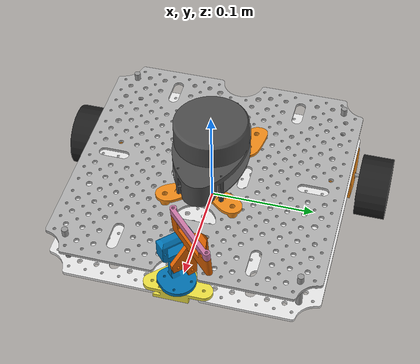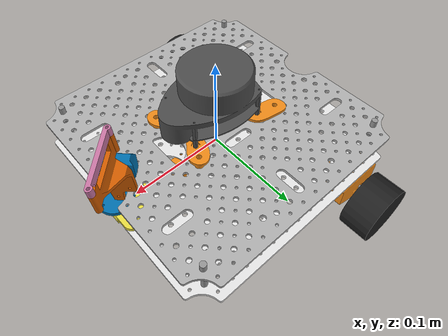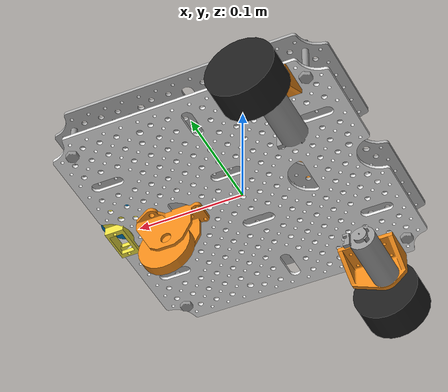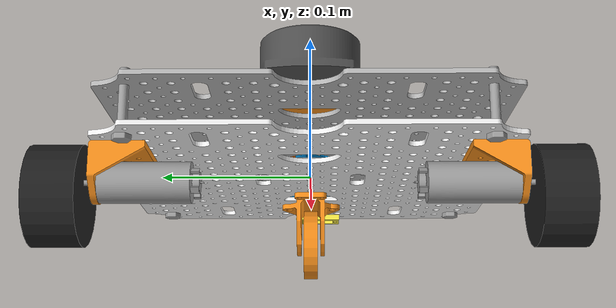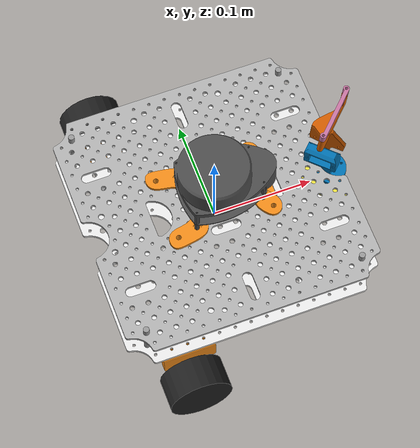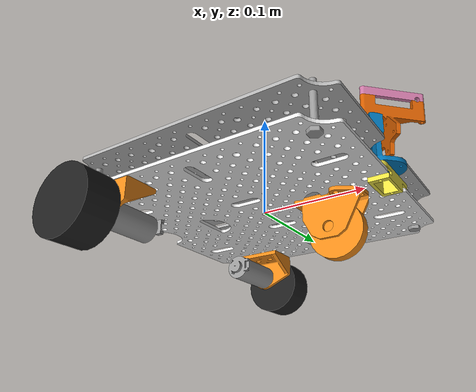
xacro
<?xml version="1.0" encoding="utf-8"?>
<robot name="billy_camarm" xmlns:xacro="http://www.ros.org/wiki/xacro">

    <!-- Joint, link and color of components -->

    <link name="base_footprint"/>
    <joint name="base_joint" type="fixed">
      <origin xyz="0 0 0" rpy="0 0 0" />
      <parent link="base_footprint"/>
      <child link="base_link"/>
    </joint>

    <link name="odom"/>
    <joint name="odom_joint" type="fixed">
      <origin xyz="0 0 0" rpy="0 0 0" />
      <parent link="odom"/>
      <child link="base_footprint"/>
    </joint>

    <link name="base_link">
      <visual>
        <geometry>
          <mesh scale="0.001 0.001 0.001" filename="package://billy_description/meshes/TurtlebotBilly_New_Stage.stl"/>
        </geometry>
        <origin xyz="0 0 0" rpy="0 0 1.57"/>
      </visual>
      <collision>
        <geometry>
          <mesh scale="0.001 0.001 0.001" filename="package://billy_description/meshes/TurtlebotBilly_New_Stage.stl"/>
        </geometry>
        <origin xyz="0 0 0" rpy="0 0 1.57"/>
      </collision>
      <inertial>
        <origin xyz="0.0 0 0"/>
        <mass value="10.0"/>
        <inertia ixx="0.01" ixy="0.0" ixz="0.0"
                 iyy="0.01" iyz="0.0"
                 izz="0.03"/>
      </inertial>
    </link>
    <gazebo reference="base_link">
      <material>Gazebo/White</material>
    </gazebo>

    <joint name="stand_1_joint" type="fixed">
      <origin xyz="0.108 0.108 -0.005" rpy="0 0 0" />
      <parent link="base_link"/>
      <child link="stand_1_link" />
    </joint>
    <link name="stand_1_link">
      <visual>
        <geometry>
         <mesh scale="0.001 0.001 0.001" filename="package://billy_description/meshes/VisM6x40.stl"/>
        </geometry>
        <origin xyz="0 0 0" rpy="0 0 0" />
      </visual>
      <collision>
        <geometry>
         <mesh scale="0.001 0.001 0.001" filename="package://billy_description/meshes/VisM6x40.stl"/>
        </geometry>
        <origin xyz="0 0 0" rpy="0 0 0" />
      </collision>
    </link>
    <gazebo reference="stand_1_link">
      <material>Gazebo/Grey</material>
    </gazebo>

    <joint name="stand_2_joint" type="fixed">
      <origin xyz="-0.108 0.108 -0.005" rpy="0 0 0" />
      <parent link="base_link"/>
      <child link="stand_2_link" />
    </joint>
    <link name="stand_2_link">
      <visual>
        <geometry>
         <mesh scale="0.001 0.001 0.001" filename="package://billy_description/meshes/VisM6x40.stl"/>
        </geometry>
        <origin xyz="0 0 0" rpy="0 0 0" />
      </visual>
      <collision>
        <geometry>
         <mesh scale="0.001 0.001 0.001" filename="package://billy_description/meshes/VisM6x40.stl"/>
        </geometry>
        <origin xyz="0 0 0" rpy="0 0 0" />
      </collision>
    </link>
    <gazebo reference="stand_2_link">
      <material>Gazebo/Grey</material>
    </gazebo>

    <joint name="stand_3_joint" type="fixed">
      <origin xyz="-0.108 -0.108 -0.005" rpy="0 0 0" />
      <parent link="base_link"/>
      <child link="stand_3_link" />
    </joint>
    <link name="stand_3_link">
      <visual>
        <geometry>
         <mesh scale="0.001 0.001 0.001" filename="package://billy_description/meshes/VisM6x40.stl"/>
        </geometry>
        <origin rpy="0 0 0" xyz="0 0 0.0"/>
      </visual>
      <collision>
        <geometry>
         <mesh scale="0.001 0.001 0.001" filename="package://billy_description/meshes/VisM6x40.stl"/>
        </geometry>
        <origin rpy="0 0 0" xyz="0 0 0.0"/>
      </collision>
    </link>
    <gazebo reference="stand_3_link">
      <material>Gazebo/Grey</material>
    </gazebo>

    <joint name="stand_4_joint" type="fixed">
      <origin xyz="0.108 -0.108 -0.005" rpy="0 0 0" />
      <parent link="base_link"/>
      <child link="stand_4_link" />
    </joint>
    <link name="stand_4_link">
      <visual>
        <geometry>
         <mesh scale="0.001 0.001 0.001" filename="package://billy_description/meshes/VisM6x40.stl"/>
        </geometry>
        <origin rpy="0 0 0" xyz="0 0 0.0"/>
      </visual>
      <collision>
        <geometry>
         <mesh scale="0.001 0.001 0.001" filename="package://billy_description/meshes/VisM6x40.stl"/>
        </geometry>
        <origin rpy="0 0 0" xyz="0 0 0.0"/>
      </collision>
    </link>
    <gazebo reference="stand_4_link">
      <material>Gazebo/Grey</material>
    </gazebo>

    <joint name="second_level_joint" type="fixed">
      <origin xyz="-0.108 -0.108 0.035" rpy="0 0 0" />
      <parent link="stand_1_link"/>
      <child link="second_level_link"/>
    </joint>
    <link name="second_level_link">
      <visual>
        <geometry>
          <mesh scale="0.001 0.001 0.001" filename="package://billy_description/meshes/TurtlebotBilly_New_Stage.stl"/>
        </geometry>
        <origin xyz="0 0 0" rpy="0 0 1.57"/>
      </visual>
      <collision>
        <geometry>
          <mesh scale="0.001 0.001 0.001" filename="package://billy_description/meshes/TurtlebotBilly_New_Stage.stl"/>
        </geometry>
        <origin xyz="0 0 0" rpy="0 0 1.57"/>
      </collision>
    </link>
    <gazebo reference="base_second_link">
      <material>Gazebo/White</material>
    </gazebo>

    <joint name="lidar_shield_joint" type="fixed">
      <origin xyz="0 0 0.01" rpy="0 0 0" />
      <parent link="second_level_link"/>
      <child link="lidar_shield_link" />
    </joint>
    <link name="lidar_shield_link">
      <visual>
        <geometry>
         <mesh scale="0.001 0.001 0.001" filename="package://billy_description/meshes/TurtlebotBilly_Shield_Lidar.stl"/>
        </geometry>
        <origin xyz="0 0 0" rpy="0 0 0"/>
      </visual>
      <collision>
        <geometry>
         <mesh scale="0.001 0.001 0.001" filename="package://billy_description/meshes/TurtlebotBilly_Shield_Lidar.stl"/>
        </geometry>
        <origin xyz="0 0 0.0" rpy="0 0 0"/>
      </collision>
    </link>
    <gazebo reference="lidar_shield_link">
      <material>Gazebo/Orange</material>
    </gazebo>

    <joint name="lidar_joint" type="fixed">
      <origin xyz="0 0 0.028" rpy="0 0 1.57" />
      <parent link="lidar_shield_link"/>
      <child link="lidar_link" />
    </joint>
    <link name="lidar_link">
      <visual>
        <geometry>
         <mesh scale="0.001 0.001 0.001" filename="package://billy_description/meshes/TurtlebotBilly_Lidar.stl"/>
        </geometry>
        <origin xyz="0 0 0" rpy="0 0 0"/>
      </visual>
      <collision>
        <geometry>
         <mesh scale="0.001 0.001 0.001" filename="package://billy_description/meshes/TurtlebotBilly_Lidar.stl"/>
        </geometry>
        <origin xyz="0 0 0.0" rpy="0 0 0"/>
      </collision>
    </link>
    <gazebo reference="lidar_link">
      <material>Gazebo/DarkGrey</material>
    </gazebo>

    <joint name="laser_joint" type="fixed">
      <origin xyz="0 0 0" rpy="0 0 0" />
      <parent link="lidar_link"/>
      <child link="laser" />
    </joint>
    <link name="laser"></link>

    <joint name="camarm_shield_joint" type="fixed">
      <origin xyz="0.12 -0.005 -0.028" rpy="0 0 0" />
      <parent link="second_level_link"/>
      <child link="camarm_shield_link" />
    </joint>
    <link name="camarm_shield_link">
      <visual>
        <geometry>
         <mesh scale="0.001 0.001 0.001" filename="package://billy_description/meshes/TurtlebotBilly_CamArm_Shield.stl"/>
        </geometry>
        <origin xyz="0 0 0" rpy="0 0 0"/>
      </visual>
      <collision>
        <geometry>
         <mesh scale="0.001 0.001 0.001" filename="package://billy_description/meshes/TurtlebotBilly_CamArm_Shield.stl"/>
        </geometry>
        <origin xyz="0 0 0" rpy="0 0 0"/>
      </collision>
      <inertial>
        <origin xyz="0 0 0"/>
        <mass value="0.5"/>
        <inertia ixx="0.01" ixy="0.0" ixz="0.0"
                 iyy="0.01" iyz="0.0"
                 izz="0.03"/>
      </inertial>
    </link>

    <joint name="camarm_ztox_joint" type="revolute">
      <origin xyz="0 0 0.01" rpy="0 0 0" />
      <parent link="camarm_shield_link"/>
      <child link="camarm_ztox_link" />
      <axis xyz="0 0 1"/>
      <limit effort="1000.0" lower="-3.14" upper="3.14" velocity="0.5"/>
    </joint>
    <link name="camarm_ztox_link">
      <visual>
        <geometry>
         <mesh scale="0.001 0.001 0.001" filename="package://billy_description/meshes/TurtlebotBilly_CamArm_ZtoX.stl"/>
        </geometry>
        <origin xyz="0 0 0" rpy="0 0 0"/>
      </visual>
      <collision>
        <geometry>
         <mesh scale="0.001 0.001 0.001" filename="package://billy_description/meshes/TurtlebotBilly_CamArm_ZtoX.stl"/>
        </geometry>
        <origin xyz="0 0 0" rpy="0 0 0"/>
      </collision>
      <inertial>
        <origin xyz="0 0 0"/>
        <mass value="0.5"/>
        <inertia ixx="0.01" ixy="0.0" ixz="0.0"
                 iyy="0.01" iyz="0.0"
                 izz="0.03"/>
      </inertial>
    </link>
    <transmission name="trans_camarm_ztox_link">
      <type>transmission_interface/SimpleTransmission</type>
      <joint name="camarm_ztox_joint">
        <hardwareInterface>hardware_interface/EffortJointInterface</hardwareInterface>
      </joint>
      <actuator name="ac_camarm_ztox_link">
        <hardwareInterface>hardware_interface/EffortJointInterface</hardwareInterface>
        <mechanicalReduction>1</mechanicalReduction>
      </actuator>
    </transmission>

    <joint name="camarm_connector_bot_joint" type="revolute">
      <origin xyz="-0.005 0.01 0.04" rpy="0 0 0.785"/>
      <parent link="camarm_ztox_link"/>
      <child link="camarm_connector_bot_link" />
      <axis xyz="1 0 0"/>
      <limit effort="1000.0" lower="-2.2" upper="-0.8" velocity="0.5"/>
    </joint>
    <link name="camarm_connector_bot_link">
      <visual>
        <geometry>
         <mesh scale="0.001 0.001 0.001" filename="package://billy_description/meshes/TurtlebotBilly_CamArm_ConnectorBot.stl"/>
        </geometry>
        <origin xyz="0.005 0 -0.045" rpy="0 0 -0.785"/>
      </visual>
      <collision>
        <geometry>
         <mesh scale="0.001 0.001 0.001" filename="package://billy_description/meshes/TurtlebotBilly_CamArm_ConnectorBot.stl"/>
        </geometry>
        <origin xyz="0.005 0 -0.045" rpy="0 0 -0.785"/>
      </collision>
      <inertial>
        <origin xyz="0 0 0"/>
        <mass value="0.5"/>
        <inertia ixx="0.01" ixy="0.0" ixz="0.0"
                 iyy="0.01" iyz="0.0"
                 izz="0.03"/>
      </inertial>
    </link>
    <transmission name="trans_camarm_connector_bot_link">
      <type>transmission_interface/SimpleTransmission</type>
      <joint name="camarm_connector_bot_joint">
        <hardwareInterface>hardware_interface/EffortJointInterface</hardwareInterface>
      </joint>
      <actuator name="ac_camarm_connector_bot_link">
        <hardwareInterface>hardware_interface/EffortJointInterface</hardwareInterface>
        <mechanicalReduction>1</mechanicalReduction>
      </actuator>
    </transmission>

    <joint name="camarm_connector_top_joint" type="fixed">
      <origin xyz="0.005 0 -0.045" rpy="0 0 -0.785"/>
      <parent link="camarm_connector_bot_link"/>
      <child link="camarm_connector_top_link" />
    </joint>
    <link name="camarm_connector_top_link">
      <visual>
        <geometry>
         <mesh scale="0.001 0.001 0.001" filename="package://billy_description/meshes/TurtlebotBilly_CamArm_ConnectorTop.stl"/>
        </geometry>
        <origin xyz="0 0 0" rpy="0 0 0"/>
      </visual>
      <collision>
        <geometry>
         <mesh scale="0.001 0.001 0.001" filename="package://billy_description/meshes/TurtlebotBilly_CamArm_ConnectorTop.stl"/>
        </geometry>
        <origin xyz="0 0 0" rpy="0 0 0"/>
      </collision>
      <inertial>
        <origin xyz="0 0 0"/>
        <mass value="0.5"/>
        <inertia ixx="0.01" ixy="0.0" ixz="0.0"
                 iyy="0.01" iyz="0.0"
                 izz="0.03"/>
      </inertial>
    </link>

    <joint name="front_wheel_holder_joint" type="fixed">
      <origin xyz="0.073 0 -0.005" rpy="0 0 3.14" />
      <parent link="base_link"/>
      <child link="front_wheel_holder_link" />
    </joint>
    <link name="front_wheel_holder_link">
      <visual>
        <geometry>
         <mesh scale="0.001 0.001 0.001" filename="package://billy_description/meshes/TurtlebotBilly_FrontWheel.stl"/>
        </geometry>
        <origin rpy="0 0 0" xyz="0 0 0.0"/>
      </visual>
      <collision>
        <geometry>
         <mesh scale="0.001 0.001 0.001" filename="package://billy_description/meshes/TurtlebotBilly_FrontWheel.stl"/>
        </geometry>
        <origin rpy="0 0 0" xyz="0 0 0.0"/>
      </collision>
    </link>
    <gazebo reference="front_wheel_holder_link">
      <material>Gazebo/Orange</material>
    </gazebo>

    <joint name="front_wheel_joint" type="fixed">
      <parent link="front_wheel_holder_link"/>
      <child link="front_wheel_link"/>
      <origin xyz="0 0 -0.028" rpy="1.57 0 0"/>
    </joint>
    <link name="front_wheel_link">
      <visual>
        <geometry>
          <cylinder length="0.01" radius="0.025"/>
          <!--sphere radius="0.19"/-->
        </geometry>
        <origin rpy="0 0 0" xyz="0 0 0"/>
      </visual>
      <collision>
        <geometry>
          <cylinder length="0.01" radius="0.025"/>
          <!--sphere radius="0.19"/-->
        </geometry>
        <origin rpy="0 0 0" xyz="0 0 0"/>
      </collision>
      <inertial>
        <mass value="0.4" />
        <origin xyz="0 0 0" />
        <inertia ixx="0.001" ixy="0.0" ixz="0.0"
                 iyy="0.001" iyz="0.0"
                 izz="0.001" />
      </inertial>
    </link>
    <gazebo reference="front_wheel_link">
      <material>Gazebo/Orange</material>
    </gazebo>

    <joint name="wheel_left_holder_joint" type="fixed">
      <origin xyz="-0.118 -0.129 -0.023" rpy="0 0 0" />
      <parent link="base_link"/>
      <child link="wheel_left_holder_link" />
    </joint>
    <link name="wheel_left_holder_link">
      <visual>
        <geometry>
         <mesh scale="0.001 0.001 0.001" filename="package://billy_description/meshes/TurtlebotBilly_Motor_ShieldL_v1.stl"/>
        </geometry>
        <origin xyz="0 0 0" rpy="0 0 0"/>
      </visual>
      <collision>
        <geometry>
         <mesh scale="0.001 0.001 0.001" filename="package://billy_description/meshes/TurtlebotBilly_Motor_ShieldL_v1.stl"/>
        </geometry>
        <origin xyz="0 0 0.0" rpy="0 0 0"/>
      </collision>
    </link>
    <gazebo reference="wheel_left_holder_link">
      <material>Gazebo/Orange</material>
    </gazebo>

    <joint name="motor_left_joint" type="fixed">
      <origin xyz="0.038 0.004 0" rpy="0 0 0" />
      <parent link="wheel_left_holder_link"/>
      <child link="motor_left_link" />
    </joint>
    <link name="motor_left_link">
      <color name="yellow" />
      <visual>
        <geometry>
         <mesh scale="0.001 0.001 0.001" filename="package://billy_description/meshes/TurtlebotBilly_Motor.stl"/>
        </geometry>
        <origin xyz="0 0 0" rpy="0 0 0"/>
      </visual>
      <collision>
        <geometry>
         <mesh scale="0.001 0.001 0.001" filename="package://billy_description/meshes/TurtlebotBilly_Motor.stl"/>
        </geometry>
        <origin xyz="0 0 0.0" rpy="0 0 0"/>
      </collision>
    </link>
    <gazebo reference="motor_left_link">
      <material>Gazebo/Grey</material>
    </gazebo>

    <joint name="wheel_left_joint" type="continuous">
      <parent link="base_link"/>
      <child link="wheel_left_link"/>
      <origin xyz="-0.075 -0.150 -0.03" rpy="-1.57 0 0"/>
      <axis xyz="0 0 1"/>
    </joint>
    <link name="wheel_left_link">
      <visual name="visual">
        <geometry>
          <!-- cylinder length="0.0206" radius="0.0550"/-->
          <cylinder length="0.031" radius="0.031"/>
        </geometry>
        <origin rpy="0.0 0 0" xyz="0 0 0"/>
      </visual>
      <collision>
        <geometry>
         <cylinder length="0.031" radius="0.031"/>
        </geometry>
        <origin rpy="0.0 0 0" xyz="0 0 0"/>
      </collision>
      <inertial>
        <mass value="0.4" />
        <origin xyz="0 0 0" />
        <inertia ixx="0.001" ixy="0.0" ixz="0.0"
                 iyy="0.001" iyz="0.0"
                 izz="0.001" />
      </inertial>
    </link>
    <gazebo reference="wheel_left_link">
      <material>Gazebo/Black</material>
    </gazebo>

    <joint name="wheel_right_holder_joint" type="fixed">
      <origin xyz="-0.080 0.129 -0.023" rpy="0 0 3.14" />
      <parent link="base_link"/>
      <child link="wheel_right_holder_link" />
    </joint>
    <link name="wheel_right_holder_link">
      <color name="yellow" />
      <visual>
        <geometry>
         <mesh scale="0.001 0.001 0.001" filename="package://billy_description/meshes/TurtlebotBilly_Motor_ShieldR_v1.stl"/>
        </geometry>
        <origin xyz="0 0 0" rpy="0 0 0"/>
      </visual>
      <collision>
        <geometry>
         <mesh scale="0.001 0.001 0.001" filename="package://billy_description/meshes/TurtlebotBilly_Motor_ShieldR_v1.stl"/>
        </geometry>
        <origin xyz="0 0 0.0" rpy="0 0 0"/>
      </collision>
    </link>
    <gazebo reference="wheel_right_holder_link">
      <material>Gazebo/Orange</material>
    </gazebo>

    <joint name="motor_right_joint" type="fixed">
      <origin xyz="0 0.004 0" rpy="0 3.14 0" />
      <parent link="wheel_right_holder_link"/>
      <child link="motor_right_link" />
    </joint>
    <link name="motor_right_link">
      <color name="yellow" />
      <visual>
        <geometry>
         <mesh scale="0.001 0.001 0.001" filename="package://billy_description/meshes/TurtlebotBilly_Motor.stl"/>
        </geometry>
        <origin xyz="0 0 0" rpy="0 0 0"/>
      </visual>
      <collision>
        <geometry>
         <mesh scale="0.001 0.001 0.001" filename="package://billy_description/meshes/TurtlebotBilly_Motor.stl"/>
        </geometry>
        <origin xyz="0 0 0.0" rpy="0 0 0"/>
      </collision>
    </link>
    <gazebo reference="motor_right_link">
      <material>Gazebo/Grey</material>
    </gazebo>

    <joint name="wheel_right_joint" type="continuous">
      <parent link="base_link"/>
      <child link="wheel_right_link"/>
      <origin xyz="-0.075 0.150 -0.03" rpy="-1.57 0 0"/>
      <axis xyz="0 0 1"/>
    </joint>
    <link name="wheel_right_link">
      <visual name="visual">
        <geometry>
          <cylinder length="0.031" radius="0.031"/>
        </geometry>
        <origin rpy="0.0 0 0" xyz="0 0 0"/>
      </visual>
      <collision>
        <geometry>
         <cylinder length="0.031" radius="0.031"/>
        </geometry>
        <origin rpy="0.0 0 0" xyz="0 0 0"/>
      </collision>
      <inertial>
        <mass value="0.4" />
        <origin xyz="0 0 0" />
        <inertia ixx="0.001" ixy="0.0" ixz="0.0"
                 iyy="0.001" iyz="0.0"
                 izz="0.001" />
      </inertial>
    </link>
    <gazebo reference="wheel_right_link">
      <material>Gazebo/Black</material>
    </gazebo>

    <!-- Gazebo Pluggins -->

    <gazebo><plugin name="differential_drive_controller" filename="libgazebo_ros_diff_drive.so">
        <legacyMode>false</legacyMode>
        <alwaysOn>true</alwaysOn>
        <rosDebugLevel>na</rosDebugLevel>
        <publishWheelTF>true</publishWheelTF>
        <publishTf>1</publishTf>
        <publishWheelJointState>true</publishWheelJointState>
        <updateRate>100.0</updateRate>
        <leftJoint>wheel_left_joint</leftJoint>
        <rightJoint>wheel_right_joint</rightJoint>
        <wheelSeparation>.03</wheelSeparation>
        <wheelDiameter>0.031</wheelDiameter>
        <wheelAcceleration>1.0</wheelAcceleration>
        <torque>20</torque>
        <wheelTorque>5</wheelTorque>
        <commandTopic>/cmd_vel</commandTopic>
        <odometryTopic>odom</odometryTopic>
        <odometryFrame>odom</odometryFrame>
        <publishOdomTF>true</publishOdomTF>
        <robotBaseFrame>base_footprint</robotBaseFrame>
        <odometrySource>world</odometrySource> <!-- 'encoder' instead of 'world' is also possible -->
        <publishTf>1</publishTf>
      </plugin>
    </gazebo>

    <gazebo reference="camarm_connector_top_link"><sensor type="camera" name="myCam">
      <update_rate>30.0</update_rate>
      <camera name="head">
        <horizontal_fov>1.04</horizontal_fov>
        <image>
          <width>720</width>
          <height>480</height>
          <format>R8G8B8</format>
        </image>
        <clip>
          <near>0.1</near>
          <far>50</far>
        </clip>
      </camera>
      <plugin name="camera_controller" filename="libgazebo_ros_camera.so">
        <alwaysOn>true</alwaysOn>
        <updateRate>0</updateRate>
        <cameraName>camera1</cameraName>
        <imageTopicName>image_raw</imageTopicName>
        <cameraInfoTopicName>camera_info</cameraInfoTopicName>
        <frameName>camera</frameName>
        <hackBaseline>0.07</hackBaseline>
        <distortionK1>0.0</distortionK1>
        <distortionK2>0.0</distortionK2>
        <distortionK3>0.0</distortionK3>
        <distortionT1>0.0</distortionT1>
        <distortionT2>0.0</distortionT2>
      </plugin>
      </sensor>
    </gazebo>

    <gazebo reference="lidar_link"><sensor type="gpu_ray" name="head_rplidar_sensor">
        <visualize>true</visualize>
        <update_rate>10</update_rate>
        <ray>
          <scan>
            <horizontal>
              <samples>400</samples>
              <resolution>1</resolution>
              <min_angle>-3.14159</min_angle>
              <max_angle>3.14159</max_angle>
            </horizontal>
          </scan>
          <range>
            <min>0.15</min>
            <max>6.0</max>
            <resolution>0.01</resolution>
          </range>
          <noise>
            <type>gaussian</type>
            <mean>0.0</mean>
            <stddev>0.01</stddev>
          </noise>
        </ray>
        <plugin name="gazebo_ros_head_rplidar_controller" filename="libgazebo_ros_gpu_laser.so">
          <topicName>/scan</topicName>
          <frameName>lidar_link</frameName>
        </plugin>
      </sensor>
    </gazebo>

    <gazebo>
      <plugin name="gazebo_ros_control" filename="libgazebo_ros_control.so">
      </plugin>
      <robotNamespace>/billy_camarm</robotNamespace>
      <robotParam>/billy_camarm/robot_description</robotParam>
    </gazebo>

</robot>
